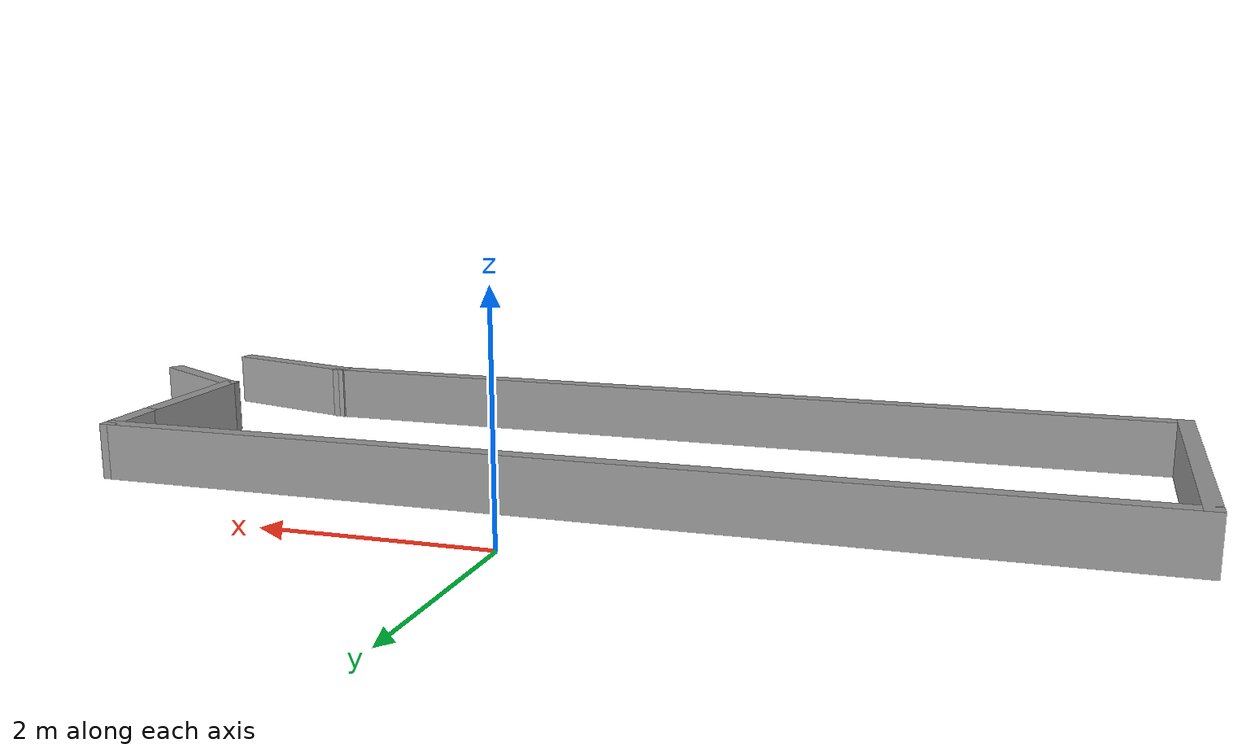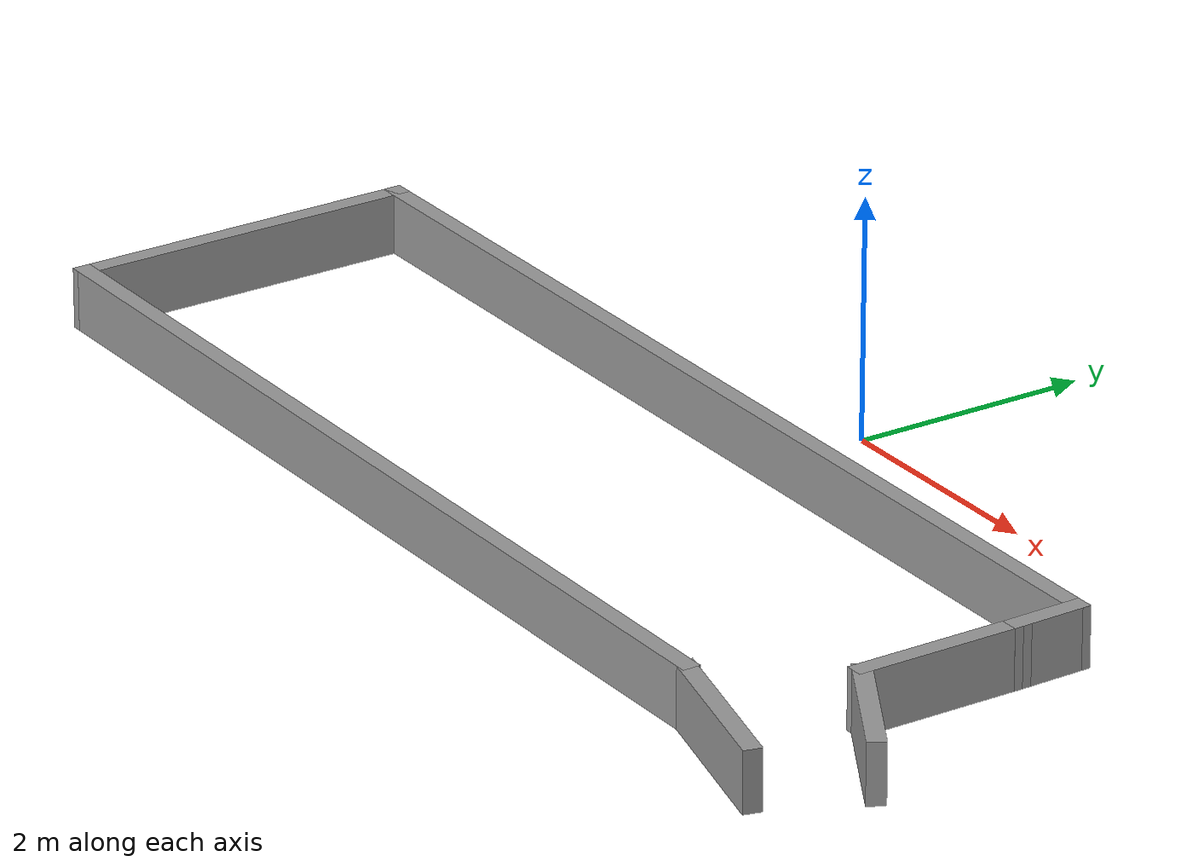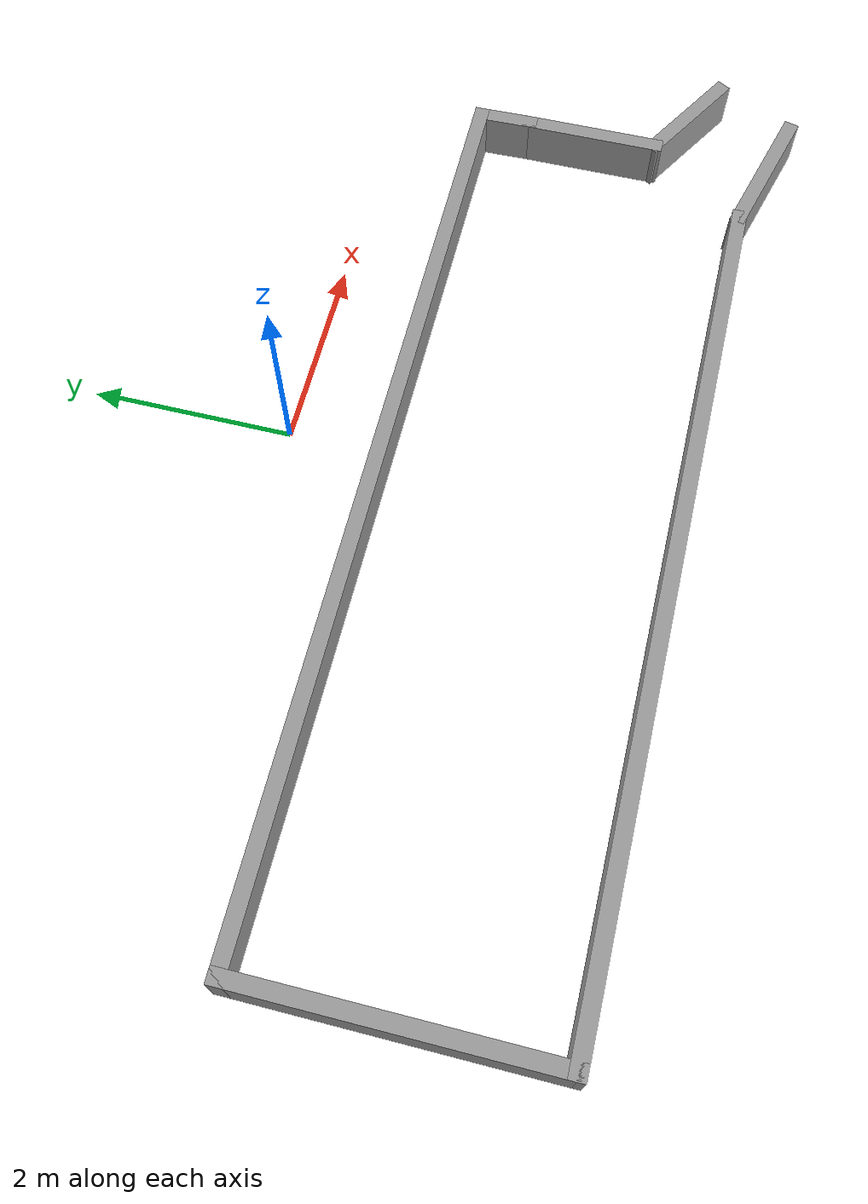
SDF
<?xml version='1.0'?>
<sdf version='1.7'>
  <model name='Final_Maze'>
    <pose>-0.00498 -2.14543 0 0 -0 0</pose>
    <link name='Wall_12'>
      <collision name='Wall_12_Collision'>
        <geometry>
          <box>
            <size>8.52005 0.15 0.5</size>
          </box>
        </geometry>
        <pose>0 0 0.25 0 -0 0</pose>
      </collision>
      <visual name='Wall_12_Visual'>
        <pose>0 0 0.25 0 -0 0</pose>
        <geometry>
          <box>
            <size>8.52005 0.15 0.5</size>
          </box>
        </geometry>
        <material>
          <script>
            <uri>file://media/materials/scripts/gazebo.material</uri>
            <name>Gazebo/Grey</name>
          </script>
          <ambient>1 1 1 1</ambient>
        </material>
        <meta>
          <layer>0</layer>
        </meta>
      </visual>
      <pose>-0.86002 -1.68957 0 0 -0 3.13801</pose>
    </link>
    <link name='Wall_18'>
      <collision name='Wall_18_Collision'>
        <geometry>
          <box>
            <size>0.680094 0.15 0.5</size>
          </box>
        </geometry>
        <pose>0 0 0.25 0 -0 0</pose>
      </collision>
      <visual name='Wall_18_Visual'>
        <pose>0 0 0.25 0 -0 0</pose>
        <geometry>
          <box>
            <size>0.680094 0.15 0.5</size>
          </box>
        </geometry>
        <material>
          <script>
            <uri>file://media/materials/scripts/gazebo.material</uri>
            <name>Gazebo/Grey</name>
          </script>
          <ambient>1 1 1 1</ambient>
        </material>
        <meta>
          <layer>0</layer>
        </meta>
      </visual>
      <pose>4.05998 0.910427 0 0 -0 1.58966</pose>
    </link>
    <link name='Wall_20'>
      <collision name='Wall_20_Collision'>
        <geometry>
          <box>
            <size>1.5 0.15 0.5</size>
          </box>
        </geometry>
        <pose>0 0 0.25 0 -0 0</pose>
      </collision>
      <visual name='Wall_20_Visual'>
        <pose>0 0 0.25 0 -0 0</pose>
        <geometry>
          <box>
            <size>1.5 0.15 0.5</size>
          </box>
        </geometry>
        <material>
          <script>
            <uri>file://media/materials/scripts/gazebo.material</uri>
            <name>Gazebo/Grey</name>
          </script>
          <ambient>1 1 1 1</ambient>
        </material>
        <meta>
          <layer>0</layer>
        </meta>
      </visual>
      <pose>4.06498 -0.029573 0 0 -0 -1.5708</pose>
    </link>
    <link name='Wall_21'>
      <collision name='Wall_21_Collision'>
        <geometry>
          <box>
            <size>1.25 0.15 0.5</size>
          </box>
        </geometry>
        <pose>0 0 0.25 0 -0 0</pose>
      </collision>
      <visual name='Wall_21_Visual'>
        <pose>0 0 0.25 0 -0 0</pose>
        <geometry>
          <box>
            <size>1.25 0.15 0.5</size>
          </box>
        </geometry>
        <material>
          <script>
            <uri>file://media/materials/scripts/gazebo.material</uri>
            <name>Gazebo/Grey</name>
          </script>
          <ambient>1 1 1 1</ambient>
        </material>
        <meta>
          <layer>0</layer>
        </meta>
      </visual>
      <pose>4.54148 -0.979573 0 0 -0 -0.52343</pose>
    </link>
    <link name='Wall_23'>
      <collision name='Wall_23_Collision'>
        <geometry>
          <box>
            <size>1.5 0.15 0.5</size>
          </box>
        </geometry>
        <pose>0 0 0.25 0 -0 0</pose>
      </collision>
      <visual name='Wall_23_Visual'>
        <pose>0 0 0.25 0 -0 0</pose>
        <geometry>
          <box>
            <size>1.5 0.15 0.5</size>
          </box>
        </geometry>
        <material>
          <script>
            <uri>file://media/materials/scripts/gazebo.material</uri>
            <name>Gazebo/Grey</name>
          </script>
          <ambient>1 1 1 1</ambient>
        </material>
        <meta>
          <layer>0</layer>
        </meta>
      </visual>
      <pose>3.97698 -1.87907 0 0 -0 -0.261509</pose>
    </link>
    <link name='Wall_25'>
      <collision name='Wall_25_Collision'>
        <geometry>
          <box>
            <size>3 0.15 0.5</size>
          </box>
        </geometry>
        <pose>0 0 0.25 0 -0 0</pose>
      </collision>
      <visual name='Wall_25_Visual'>
        <pose>0 0 0.25 0 -0 0</pose>
        <geometry>
          <box>
            <size>3 0.15 0.5</size>
          </box>
        </geometry>
        <material>
          <script>
            <uri>file://media/materials/scripts/gazebo.material</uri>
            <name>Gazebo/Grey</name>
          </script>
          <ambient>1 1 1 1</ambient>
        </material>
        <meta>
          <layer>0</layer>
        </meta>
      </visual>
      <pose>-5.04502 -0.249573 0 0 -0 -1.5708</pose>
    </link>
    <link name='Wall_3'>
      <collision name='Wall_3_Collision'>
        <geometry>
          <box>
            <size>9.25 0.15 0.5</size>
          </box>
        </geometry>
        <pose>0 0 0.25 0 -0 0</pose>
      </collision>
      <visual name='Wall_3_Visual'>
        <pose>0 0 0.25 0 -0 0</pose>
        <geometry>
          <box>
            <size>9.25 0.15 0.5</size>
          </box>
        </geometry>
        <material>
          <script>
            <uri>file://media/materials/scripts/gazebo.material</uri>
            <name>Gazebo/Grey</name>
          </script>
          <ambient>1 1 1 1</ambient>
        </material>
        <meta>
          <layer>0</layer>
        </meta>
      </visual>
      <pose>-0.49502 1.17543 0 0 -0 0</pose>
    </link>
    <static>1</static>
  </model>
</sdf>
